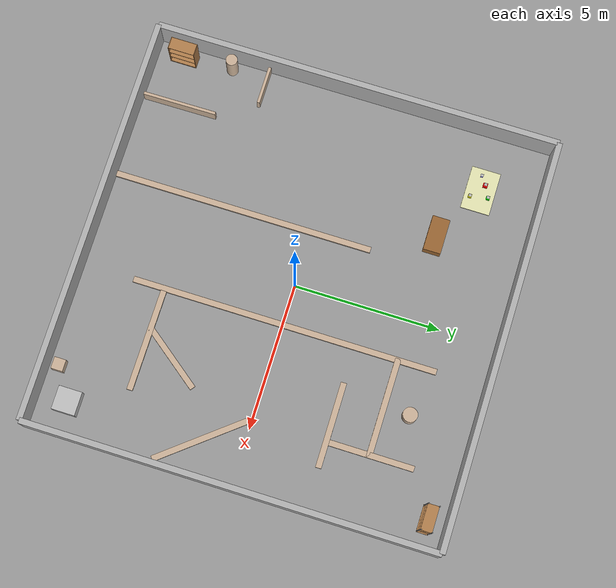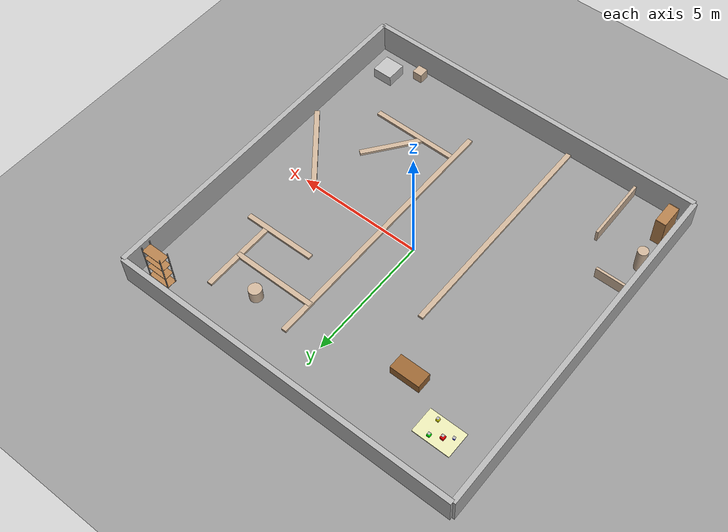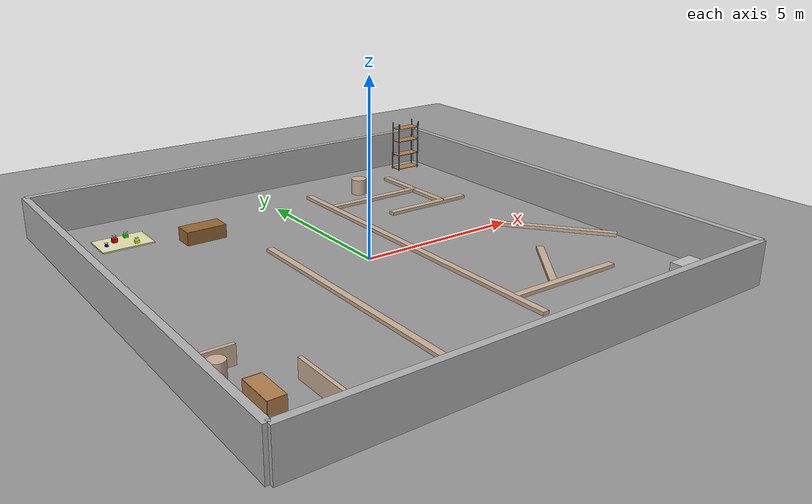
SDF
<sdf version='1.7'>
  <world name='default'>
  <physics type="ode">
    <max_step_size>0.02</max_step_size>
    <real_time_factor>0.95</real_time_factor>
    <rtf_tolerance>0.2</rtf_tolerance>
    <real_time_update_rate>50</real_time_update_rate>
    <ode>
      <solver>
        <type>quick</type>
        <iters>30</iters>
        <sor>1.0</sor>
      </solver>
      <constraints>
        <cfm>0.00001</cfm>
        <erp>0.2</erp>
        <contact_max_correcting_vel>100.0</contact_max_correcting_vel>
        <contact_surface_layer>0.001</contact_surface_layer>
      </constraints>
    </ode>
  </physics>

    <light name='sun' type='directional'>
      <cast_shadows>1</cast_shadows>
      <pose>0 0 10 0 -0 0</pose>
      <diffuse>0.8 0.8 0.8 1</diffuse>
      <specular>0.2 0.2 0.2 1</specular>
      <attenuation>
        <range>1000</range>
        <constant>0.9</constant>
        <linear>0.01</linear>
        <quadratic>0.001</quadratic>
      </attenuation>
      <direction>-0.5 0.1 -0.9</direction>
      <spot>
        <inner_angle>0</inner_angle>
        <outer_angle>0</outer_angle>
        <falloff>0</falloff>
      </spot>
    </light>

    <model name='ground_plane'>
      <static>1</static>
      <link name='link'>
        <collision name="collision">
          <geometry>
            <plane>
              <normal>0 0 1</normal>
              <size>17 17</size>
            </plane>
          </geometry>
          <max_contacts>10</max_contacts>
          <surface>
            <friction>
              <ode>
                <mu>1.0</mu>
                <mu2>1.0</mu2>
                <slip1>0</slip1>
                <slip2>0</slip2>
              </ode>
            </friction>
            <contact>
              <ode>
                <soft_cfm>0.001</soft_cfm>
                <soft_erp>0.2</soft_erp>
              </ode>
            </contact>
          </surface>
        </collision>
        <visual name='visual'>
          <geometry>
            <plane>
              <normal>0 0 1</normal>
              <size>17 17</size>
            </plane>
          </geometry>
          <material>
            <ambient>0.5 0.5 0.5 1</ambient>
            <diffuse>0.6 0.6 0.6 1</diffuse>
          </material>
        </visual>
      </link>
    </model>

    <model name='wall_north'>
      <static>1</static>
      <pose>0 7 0.6 0 -0 0</pose>
      <link name='link'>
        <collision name='collision'>
          <geometry>
            <box>
              <size>14 0.2 1.2</size>
            </box>
          </geometry>
          <max_contacts>10</max_contacts>
          <surface>
            <contact>
              <ode/>
            </contact>
            <bounce/>
            <friction>
              <torsional>
                <ode/>
              </torsional>
              <ode/>
            </friction>
          </surface>
        </collision>
        <visual name='visual'>
          <geometry>
            <box>
              <size>14 0.2 1.2</size>
            </box>
          </geometry>
          <material>
            <ambient>0.7 0.7 0.7 1</ambient>
            <diffuse>0.7 0.7 0.7 1</diffuse>
          </material>
        </visual>
      </link>
    </model>
    <model name='wall_south'>
      <static>1</static>
      <pose>0 -7 0.6 0 -0 0</pose>
      <link name='link'>
        <collision name='collision'>
          <geometry>
            <box>
              <size>14 0.2 1.2</size>
            </box>
          </geometry>
          <max_contacts>10</max_contacts>
          <surface>
            <contact>
              <ode/>
            </contact>
            <bounce/>
            <friction>
              <torsional>
                <ode/>
              </torsional>
              <ode/>
            </friction>
          </surface>
        </collision>
        <visual name='visual'>
          <geometry>
            <box>
              <size>14 0.2 1.2</size>
            </box>
          </geometry>
          <material>
            <ambient>0.7 0.7 0.7 1</ambient>
            <diffuse>0.7 0.7 0.7 1</diffuse>
          </material>
        </visual>
      </link>
    </model>
    <model name='wall_east'>
      <static>1</static>
      <pose>7 0 0.6 0 -0 0</pose>
      <link name='link'>
        <collision name='collision'>
          <geometry>
            <box>
              <size>0.2 14 1.2</size>
            </box>
          </geometry>
          <max_contacts>10</max_contacts>
          <surface>
            <contact>
              <ode/>
            </contact>
            <bounce/>
            <friction>
              <torsional>
                <ode/>
              </torsional>
              <ode/>
            </friction>
          </surface>
        </collision>
        <visual name='visual'>
          <geometry>
            <box>
              <size>0.2 14 1.2</size>
            </box>
          </geometry>
          <material>
            <ambient>0.7 0.7 0.7 1</ambient>
            <diffuse>0.7 0.7 0.7 1</diffuse>
          </material>
        </visual>
      </link>
    </model>
    <model name='wall_west'>
      <static>1</static>
      <pose>-7 0 0.6 0 -0 0</pose>
      <link name='link'>
        <collision name='collision'>
          <geometry>
            <box>
              <size>0.2 14 1.2</size>
            </box>
          </geometry>
          <max_contacts>10</max_contacts>
          <surface>
            <contact>
              <ode/>
            </contact>
            <bounce/>
            <friction>
              <torsional>
                <ode/>
              </torsional>
              <ode/>
            </friction>
          </surface>
        </collision>
        <visual name='visual'>
          <geometry>
            <box>
              <size>0.2 14 1.2</size>
            </box>
          </geometry>
          <material>
            <ambient>0.7 0.7 0.7 1</ambient>
            <diffuse>0.7 0.7 0.7 1</diffuse>
          </material>
        </visual>
      </link>
    </model>

    <model name='shelf1'>
      <static>1</static>
      <link name='link'>
        <inertial>
          <mass>1</mass>
        </inertial>
        <collision name='back'>
          <pose>0 0.005 0.6 0 -0 0</pose>
          <geometry>
            <box>
              <size>0.9 0.01 1.2</size>
            </box>
          </geometry>
          <max_contacts>10</max_contacts>
          <surface>
            <contact><ode/></contact>
            <bounce/>
            <friction>
              <torsional><ode/></torsional>
              <ode/>
            </friction>
          </surface>
        </collision>
        <visual name='visual1'>
          <pose>0 0.005 0.6 0 -0 0</pose>
          <geometry>
            <box>
              <size>0.9 0.01 1.2</size>
            </box>
          </geometry>
          <material>
            <diffuse>1 1 1 1</diffuse>
            <script>
              <uri>file://media/materials/scripts/gazebo.material</uri>
              <name>Gazebo/Wood</name>
            </script>
          </material>
        </visual>

        <collision name='left_side'>
          <pose>0.45 -0.195 0.6 0 -0 0</pose>
          <geometry>
            <box>
              <size>0.02 0.4 1.2</size>
            </box>
          </geometry>
          <max_contacts>10</max_contacts>
          <surface>
            <contact><ode/></contact>
            <bounce/>
            <friction>
              <torsional><ode/></torsional>
              <ode/>
            </friction>
          </surface>
        </collision>
        <visual name='visual2'>
          <pose>0.45 -0.195 0.6 0 -0 0</pose>
          <geometry>
            <box>
              <size>0.02 0.4 1.2</size>
            </box>
          </geometry>
          <material>
            <diffuse>1 1 1 1</diffuse>
            <script>
              <uri>file://media/materials/scripts/gazebo.material</uri>
              <name>Gazebo/Wood</name>
            </script>
          </material>
        </visual>

        <collision name='right_side'>
          <pose>-0.45 -0.195 0.6 0 -0 0</pose>
          <geometry>
            <box>
              <size>0.02 0.4 1.2</size>
            </box>
          </geometry>
          <max_contacts>10</max_contacts>
          <surface>
            <contact><ode/></contact>
            <bounce/>
            <friction>
              <torsional><ode/></torsional>
              <ode/>
            </friction>
          </surface>
        </collision>
        <visual name='visual3'>
          <pose>-0.45 -0.195 0.6 0 -0 0</pose>
          <geometry>
            <box>
              <size>0.02 0.4 1.2</size>
            </box>
          </geometry>
          <material>
            <diffuse>1 1 1 1</diffuse>
            <script>
              <uri>file://media/materials/scripts/gazebo.material</uri>
              <name>Gazebo/Wood</name>
            </script>
          </material>
        </visual>

        <collision name='bottom'>
          <pose>0 -0.195 0.03 0 -0 0</pose>
          <geometry>
            <box>
              <size>0.88 0.4 0.06</size>
            </box>
          </geometry>
          <max_contacts>10</max_contacts>
          <surface>
            <contact><ode/></contact>
            <bounce/>
            <friction>
              <torsional><ode/></torsional>
              <ode/>
            </friction>
          </surface>
        </collision>
        <visual name='visual4'>
          <pose>0 -0.195 0.03 0 -0 0</pose>
          <geometry>
            <box>
              <size>0.88 0.4 0.06</size>
            </box>
          </geometry>
          <material>
            <diffuse>1 1 1 1</diffuse>
            <script>
              <uri>file://media/materials/scripts/gazebo.material</uri>
              <name>Gazebo/Wood</name>
            </script>
          </material>
        </visual>

        <collision name='top'>
          <pose>0 -0.195 1.19 0 -0 0</pose>
          <geometry>
            <box>
              <size>0.88 0.4 0.02</size>
            </box>
          </geometry>
          <max_contacts>10</max_contacts>
          <surface>
            <contact><ode/></contact>
            <bounce/>
            <friction>
              <torsional><ode/></torsional>
              <ode/>
            </friction>
          </surface>
        </collision>
        <visual name='visual5'>
          <pose>0 -0.195 1.19 0 0 0</pose>
          <geometry>
            <box>
              <size>0.88 0.4 0.02</size>
            </box>
          </geometry>
          <material>
            <diffuse>1 1 1 1</diffuse>
            <script>
              <uri>file://media/materials/scripts/gazebo.material</uri>
              <name>Gazebo/Wood</name>
            </script>
          </material>
        </visual>

        <collision name='low_shelf'>
          <pose>0 -0.195 0.43 0 -0 0</pose>
          <geometry>
            <box>
              <size>0.88 0.4 0.02</size>
            </box>
          </geometry>
          <max_contacts>10</max_contacts>
          <surface>
            <contact><ode/></contact>
            <bounce/>
            <friction>
              <torsional><ode/></torsional>
              <ode/>
            </friction>
          </surface>
        </collision>
        <visual name='visual6'>
          <pose>0 -0.195 0.43 0 -0 0</pose>
          <geometry>
            <box>
              <size>0.88 0.4 0.02</size>
            </box>
          </geometry>
          <material>
            <diffuse>1 1 1 1</diffuse>
            <script>
              <uri>file://media/materials/scripts/gazebo.material</uri>
              <name>Gazebo/Wood</name>
            </script>
          </material>
        </visual>

        <collision name='high_shelf'>
          <pose>0 -0.195 0.8 0 -0 0</pose>
          <geometry>
            <box>
              <size>0.88 0.4 0.02</size>
            </box>
          </geometry>
          <max_contacts>10</max_contacts>
          <surface>
            <contact><ode/></contact>
            <bounce/>
            <friction>
              <torsional><ode/></torsional>
              <ode/>
            </friction>
          </surface>
        </collision>
        <visual name='visual7'>
          <pose>0 -0.195 0.8 0 -0 0</pose>
          <geometry>
            <box>
              <size>0.88 0.4 0.02</size>
            </box>
          </geometry>
          <material>
            <diffuse>1 1 1 1</diffuse>
            <script>
              <uri>file://media/materials/scripts/gazebo.material</uri>
              <name>Gazebo/Wood</name>
            </script>
          </material>
        </visual>

        <self_collide>0</self_collide>
        <enable_wind>0</enable_wind>
        <kinematic>0</kinematic>
      </link>
      <pose>-6.689921 -5.985553 0 0 0 1.568251</pose>
    </model>

    <model name='shelf2'>
      <static>1</static>
      <pose>6.07 6.3 0 0 0 0</pose>
      <link name='body'>
        <!-- 底板 -->
        <collision name='bottom_board'>
          <pose>0 0 0.05 0 0 0</pose>
          <geometry>
            <box>
              <size>0.9 0.4 0.02</size>
            </box>
          </geometry>
          <surface>
            <contact><ode/></contact>
            <friction><ode><mu>0.8</mu></ode></friction>
          </surface>
        </collision>
        <visual name='bottom_board_vis'>
          <pose>0 0 0.05 0 0 0</pose>
          <geometry>
            <box>
              <size>0.9 0.4 0.02</size>
            </box>
          </geometry>
          <material>
            <ambient>0.7 0.5 0.3 1</ambient>
            <diffuse>0.7 0.5 0.3 1</diffuse>
          </material>
        </visual>

        <!-- 支柱1：前左 -->
        <collision name='leg_front_left'>
          <pose>-0.42 -0.18 0.85 0 0 0</pose>
          <geometry>
            <cylinder>
              <radius>0.02</radius>
              <length>1.7</length>
            </cylinder>
          </geometry>
          <surface>
            <contact><ode/></contact>
            <friction><ode><mu>0.8</mu></ode></friction>
          </surface>
        </collision>
        <visual name='leg_front_left_vis'>
          <pose>-0.42 -0.18 0.85 0 0 0</pose>
          <geometry>
            <cylinder>
              <radius>0.02</radius>
              <length>1.7</length>
            </cylinder>
          </geometry>
          <material>
            <ambient>0.5 0.5 0.5 1</ambient>
            <diffuse>0.5 0.5 0.5 1</diffuse>
          </material>
        </visual>

        <!-- 支柱2：前右 -->
        <collision name='leg_front_right'>
          <pose>0.42 -0.18 0.85 0 0 0</pose>
          <geometry>
            <cylinder>
              <radius>0.02</radius>
              <length>1.7</length>
            </cylinder>
          </geometry>
          <surface>
            <contact><ode/></contact>
            <friction><ode><mu>0.8</mu></ode></friction>
          </surface>
        </collision>
        <visual name='leg_front_right_vis'>
          <pose>0.42 -0.18 0.85 0 0 0</pose>
          <geometry>
            <cylinder>
              <radius>0.02</radius>
              <length>1.7</length>
            </cylinder>
          </geometry>
          <material>
            <ambient>0.5 0.5 0.5 1</ambient>
            <diffuse>0.5 0.5 0.5 1</diffuse>
          </material>
        </visual>

        <!-- 支柱3：后左 -->
        <collision name='leg_back_left'>
          <pose>-0.42 0.18 0.85 0 0 0</pose>
          <geometry>
            <cylinder>
              <radius>0.02</radius>
              <length>1.7</length>
            </cylinder>
          </geometry>
          <surface>
            <contact><ode/></contact>
            <friction><ode><mu>0.8</mu></ode></friction>
          </surface>
        </collision>
        <visual name='leg_back_left_vis'>
          <pose>-0.42 0.18 0.85 0 0 0</pose>
          <geometry>
            <cylinder>
              <radius>0.02</radius>
              <length>1.7</length>
            </cylinder>
          </geometry>
          <material>
            <ambient>0.5 0.5 0.5 1</ambient>
            <diffuse>0.5 0.5 0.5 1</diffuse>
          </material>
        </visual>

        <!-- 支柱4：后右 -->
        <collision name='leg_back_right'>
          <pose>0.42 0.18 0.85 0 0 0</pose>
          <geometry>
            <cylinder>
              <radius>0.02</radius>
              <length>1.7</length>
            </cylinder>
          </geometry>
          <surface>
            <contact><ode/></contact>
            <friction><ode><mu>0.8</mu></ode></friction>
          </surface>
        </collision>
        <visual name='leg_back_right_vis'>
          <pose>0.42 0.18 0.85 0 0 0</pose>
          <geometry>
            <cylinder>
              <radius>0.02</radius>
              <length>1.7</length>
            </cylinder>
          </geometry>
          <material>
            <ambient>0.5 0.5 0.5 1</ambient>
            <diffuse>0.5 0.5 0.5 1</diffuse>
          </material>
        </visual>

        <!-- 搁板1（底层） -->
        <collision name='bottom'>
          <pose>0 0 0.55 0 0 0</pose>
          <geometry>
            <box>
              <size>0.86 0.38 0.02</size>
            </box>
          </geometry>
          <surface>
            <contact><ode/></contact>
            <friction><ode><mu>0.8</mu></ode></friction>
          </surface>
        </collision>
        <visual name='shelf1_vis'>
          <pose>0 0 0.55 0 0 0</pose>
          <geometry>
            <box>
              <size>0.86 0.38 0.02</size>
            </box>
          </geometry>
          <material>
            <ambient>0.7 0.5 0.3 1</ambient>
            <diffuse>0.7 0.5 0.3 1</diffuse>
          </material>
        </visual>

        <!-- 搁板2（中层） -->
        <collision name='middle'>
          <pose>0 0 1.05 0 0 0</pose>
          <geometry>
            <box>
              <size>0.86 0.38 0.02</size>
            </box>
          </geometry>
          <surface>
            <contact><ode/></contact>
            <friction><ode><mu>0.8</mu></ode></friction>
          </surface>
        </collision>
        <visual name='shelf2_vis'>
          <pose>0 0 1.05 0 0 0</pose>
          <geometry>
            <box>
              <size>0.86 0.38 0.02</size>
            </box>
          </geometry>
          <material>
            <ambient>0.7 0.5 0.3 1</ambient>
            <diffuse>0.7 0.5 0.3 1</diffuse>
          </material>
        </visual>

        <!-- 搁板3（高层） -->
        <collision name='top'>
          <pose>0 0 1.5 0 0 0</pose>
          <geometry>
            <box>
              <size>0.86 0.38 0.02</size>
            </box>
          </geometry>
          <surface>
            <contact><ode/></contact>
            <friction><ode><mu>0.8</mu></ode></friction>
          </surface>
        </collision>
        <visual name='shelf3_vis'>
          <pose>0 0 1.5 0 0 0</pose>
          <geometry>
            <box>
              <size>0.86 0.38 0.02</size>
            </box>
          </geometry>
          <material>
            <ambient>0.7 0.5 0.3 1</ambient>
            <diffuse>0.7 0.5 0.3 1</diffuse>
          </material>
        </visual>

        <self_collide>0</self_collide>
        <enable_wind>0</enable_wind>
        <kinematic>0</kinematic>
      </link>
    </model>

    <model name='shelf3'>
      <static>1</static>
      <pose>5.9 -5.9 0.225 0 -0 0</pose>
      <link name='body'>
        <inertial>
          <mass>8</mass>
          <inertia>
            <ixx>0.4</ixx>
            <iyy>0.4</iyy>
            <izz>0.4</izz>
            <ixy>0</ixy>
            <ixz>0</ixz>
            <iyz>0</iyz>
          </inertia>
        </inertial>
        <collision name='collision'>
          <geometry>
            <box>
              <size>0.8 0.8 0.45</size>
            </box>
          </geometry>
          <max_contacts>10</max_contacts>
          <surface>
            <contact>
              <ode/>
            </contact>
            <bounce/>
            <friction>
              <torsional>
                <ode/>
              </torsional>
              <ode/>
            </friction>
          </surface>
        </collision>
        <visual name='visual'>
          <geometry>
            <box>
              <size>0.8 0.8 0.45</size>
            </box>
          </geometry>
          <material>
            <ambient>0.75 0.75 0.75 1</ambient>
            <diffuse>0.75 0.75 0.75 1</diffuse>
          </material>
        </visual>
      </link>
    </model>

    <model name='wooden1_south'>
      <static>1</static>
      <pose>-1.909132 -2.480868 0.05 0 0 0</pose>
      <link name='link'>
        <collision name='collision'>
          <geometry>
            <box>
              <size>0.2 9.06 0.1</size>
            </box>
          </geometry>
        </collision>
        <visual name='visual'>
          <geometry>
            <box>
              <size>0.2 9.06 0.1</size>
            </box>
          </geometry>
          <material>
            <ambient>0.8 0.7 0.6 1</ambient>
            <diffuse>0.8 0.7 0.6 1</diffuse>
          </material>
        </visual>
      </link>
    </model>

    <model name='wooden2_south'>
      <static>1</static>
      <pose>1.380459 0.056440 0.05 0 0 0</pose>
      <link name='link'>
        <collision name='collision'>
          <geometry>
            <box>
              <size>0.2 10.48 0.1</size>
            </box>
          </geometry>
        </collision>
        <visual name='visual'>
          <geometry>
            <box>
              <size>0.2 10.48 0.1</size>
            </box>
          </geometry>
          <material>
            <ambient>0.8 0.7 0.6 1</ambient>
            <diffuse>0.8 0.7 0.6 1</diffuse>
          </material>
        </visual>
      </link>
    </model>

    <model name='wooden3_parallel_south'>
      <static>1</static>
      <pose>3.199973 -4.111985 0.05 0 0 -1.577488</pose>
      <link name='link'>
        <collision name='collision'>
          <geometry>
            <box>
              <size>0.2 3.47 0.1</size>
            </box>
          </geometry>
        </collision>
        <visual name='visual'>
          <geometry>
            <box>
              <size>0.2 3.47 0.1</size>
            </box>
          </geometry>
          <material>
            <ambient>0.8 0.7 0.6 1</ambient>
            <diffuse>0.8 0.7 0.6 1</diffuse>
          </material>
        </visual>
      </link>
    </model>

    <model name='wooden4_str_psouth'>
      <static>1</static>
      <pose>3.529444 -3.134761 0.05 0 0 2.489357</pose>
      <link name='link'>
        <collision name='collision'>
          <geometry>
            <box>
              <size>0.2 2.43 0.1</size>
            </box>
          </geometry>
        </collision>
        <visual name='visual'>
          <geometry>
            <box>
              <size>0.2 2.43 0.1</size>
            </box>
          </geometry>
          <material>
            <ambient>0.8 0.7 0.6 1</ambient>
            <diffuse>0.8 0.7 0.6 1</diffuse>
          </material>
        </visual>
      </link>
    </model>

    <model name='wooden5_alone_east'>
      <static>1</static>
      <pose>5.751680 -1.365539 0.05 0 0 -2.461690</pose>
      <link name='link'>
        <collision name='collision'>
          <geometry>
            <box>
              <size>0.2 3.47 0.1</size>
            </box>
          </geometry>
        </collision>
        <visual name='visual'>
          <geometry>
            <box>
              <size>0.2 3.47 0.1</size>
            </box>
          </geometry>
          <material>
            <ambient>0.8 0.7 0.6 1</ambient>
            <diffuse>0.8 0.7 0.6 1</diffuse>
          </material>
        </visual>
      </link>
    </model>

    <model name='wooden6_str_east'>
      <static>1</static>
      <pose>4.067688 2.507385 0.05 0 0 -1.566243</pose>
      <link name='link'>
        <collision name='collision'>
          <geometry>
            <box>
              <size>0.2 2.9 0.1</size>
            </box>
          </geometry>
        </collision>
        <visual name='visual'>
          <geometry>
            <box>
              <size>0.2 2.9 0.1</size>
            </box>
          </geometry>
          <material>
            <ambient>0.8 0.7 0.6 1</ambient>
            <diffuse>0.8 0.7 0.6 1</diffuse>
          </material>
        </visual>
      </link>
    </model>

    <model name='wooden7_parallel_east'>
      <static>1</static>
      <pose>4.631216 3.977165 0.05 0 0 0</pose>
      <link name='link'>
        <collision name='collision'>
          <geometry>
            <box>
              <size>0.2 3.02 0.1</size>
            </box>
          </geometry>
        </collision>
        <visual name='visual'>
          <geometry>
            <box>
              <size>0.2 3.02 0.1</size>
            </box>
          </geometry>
          <material>
            <ambient>0.8 0.7 0.6 1</ambient>
            <diffuse>0.8 0.7 0.6 1</diffuse>
          </material>
        </visual>
      </link>
    </model>

    <model name='wooden8_parallel_north'>
      <static>1</static>
      <pose>3.010885 3.976159 0.05 0 0 -1.571304</pose>
      <link name='link'>
        <collision name='collision'>
          <geometry>
            <box>
              <size>0.2 3.38 0.1</size>
            </box>
          </geometry>
        </collision>
        <visual name='visual'>
          <geometry>
            <box>
              <size>0.2 3.38 0.1</size>
            </box>
          </geometry>
          <material>
            <ambient>0.8 0.7 0.6 1</ambient>
            <diffuse>0.8 0.7 0.6 1</diffuse>
          </material>
        </visual>
      </link>
    </model>

    <model name='narrow_wall1'>
      <static>1</static>
      <pose>-6.278199 -3.047679 0.25 0 0 0</pose>
      <link name='link'>
        <inertial>
          <mass>4</mass>
          <inertia>
            <ixx>0.2</ixx>
            <iyy>0.2</iyy>
            <izz>0.2</izz>
            <ixy>0</ixy>
            <ixz>0</ixz>
            <iyz>0</iyz>
          </inertia>
        </inertial>
        <collision name='collision'>
          <geometry>
            <box>
              <size>1.37764 0.1 0.5</size>
            </box>
          </geometry>
          <max_contacts>10</max_contacts>
          <surface>
            <contact>
              <ode/>
            </contact>
            <bounce/>
            <friction>
              <torsional>
                <ode/>
              </torsional>
              <ode/>
            </friction>
          </surface>
        </collision>
        <visual name='visual'>
          <geometry>
            <box>
              <size>1.37764 0.1 0.5</size>
            </box>
          </geometry>
          <material>
            <ambient>0.8 0.7 0.6 1</ambient>
            <diffuse>0.8 0.7 0.6 1</diffuse>
          </material>
        </visual>
      </link>
    </model>

    <model name='narrow_wall2'>
      <static>1</static>
      <pose>-4.780673 -5.583704 0.25 0 0 1.578324</pose>
      <link name='link'>
        <inertial>
          <mass>4</mass>
          <inertia>
            <ixx>0.2</ixx>
            <iyy>0.2</iyy>
            <izz>0.2</izz>
            <ixy>0</ixy>
            <ixz>0</ixz>
            <iyz>0</iyz>
          </inertia>
        </inertial>
        <collision name='collision'>
          <geometry>
            <box>
              <size>2.54 0.1 0.5</size>
            </box>
          </geometry>
          <max_contacts>10</max_contacts>
          <surface>
            <contact>
              <ode/>
            </contact>
            <bounce/>
            <friction>
              <torsional>
                <ode/>
              </torsional>
              <ode/>
            </friction>
          </surface>
        </collision>
        <visual name='visual'>
          <geometry>
            <box>
              <size>2.54 0.1 0.5</size>
            </box>
          </geometry>
          <material>
            <ambient>0.8 0.7 0.6 1</ambient>
            <diffuse>0.8 0.7 0.6 1</diffuse>
          </material>
        </visual>
      </link>
    </model>

    <model name='obstacle_cylinder1'>
      <static>1</static>
      <pose>3.029996 4.849996 0.25 0 0 0</pose>
      <link name='link'>
        <inertial>
          <mass>5</mass>
          <inertia>
            <ixx>0.1</ixx>
            <iyy>0.1</iyy>
            <izz>0.1</izz>
            <ixy>0</ixy>
            <ixz>0</ixz>
            <iyz>0</iyz>
          </inertia>
        </inertial>
        <collision name='collision'>
          <geometry>
            <cylinder>
              <radius>0.25</radius>
              <length>0.5</length>
            </cylinder>
          </geometry>
          <max_contacts>10</max_contacts>
          <surface>
            <contact>
              <ode/>
            </contact>
            <bounce/>
            <friction>
              <torsional>
                <ode/>
              </torsional>
              <ode/>
            </friction>
          </surface>
        </collision>
        <visual name='visual'>
          <geometry>
            <cylinder>
              <radius>0.25</radius>
              <length>0.5</length>
            </cylinder>
          </geometry>
          <material>
            <ambient>0.8 0.7 0.6 1</ambient>
            <diffuse>0.8 0.7 0.6 1</diffuse>
          </material>
        </visual>
      </link>
    </model>

    <model name='obstacle_box2'>
      <static>1</static>
      <pose>4.849996 -6.559319 0.2 0 0 0</pose>
      <link name='link'>
        <inertial>
          <mass>2</mass>
          <inertia>
            <ixx>0.05</ixx>
            <iyy>0.05</iyy>
            <izz>0.05</izz>
            <ixy>0</ixy>
            <ixz>0</ixz>
            <iyz>0</iyz>
          </inertia>
        </inertial>
        <collision name='collision'>
          <geometry>
            <box>
              <size>0.4 0.4 0.4</size>
            </box>
          </geometry>
          <max_contacts>10</max_contacts>
          <surface>
            <contact>
              <ode/>
            </contact>
            <bounce/>
            <friction>
              <torsional>
                <ode/>
              </torsional>
              <ode/>
            </friction>
          </surface>
        </collision>
        <visual name='visual'>
          <geometry>
            <box>
              <size>0.4 0.4 0.4</size>
            </box>
          </geometry>
          <material>
            <ambient>0.8 0.7 0.6 1</ambient>
            <diffuse>0.8 0.7 0.6 1</diffuse>
          </material>
        </visual>
      </link>
    </model>

    <model name='pillar'>
      <static>1</static>
      <pose>-6.6 -4.3 0.5 0 0 0</pose>
      <link name='link'>
        <inertial>
          <mass>5</mass>
          <inertia>
            <ixx>0.1</ixx>
            <iyy>0.1</iyy>
            <izz>0.1</izz>
            <ixy>0</ixy>
            <ixz>0</ixz>
            <iyz>0</iyz>
          </inertia>
        </inertial>
        <collision name='collision'>
          <geometry>
            <cylinder>
              <radius>0.2</radius>
              <length>1</length>
            </cylinder>
          </geometry>
          <max_contacts>10</max_contacts>
          <surface>
            <contact>
              <ode/>
            </contact>
            <bounce/>
            <friction>
              <torsional>
                <ode/>
              </torsional>
              <ode/>
            </friction>
          </surface>
        </collision>
        <visual name='visual'>
          <geometry>
            <cylinder>
              <radius>0.2</radius>
              <length>1</length>
            </cylinder>
          </geometry>
          <material>
            <ambient>0.8 0.7 0.6 1</ambient>
            <diffuse>0.8 0.7 0.6 1</diffuse>
          </material>
        </visual>
      </link>
    </model>

    <model name='workbench'>
      <static>1</static>
      <pose>-3 4 0.2 0 0 0</pose>
      <link name='link'>
        <inertial>
          <mass>6</mass>
          <inertia>
            <ixx>0.3</ixx>
            <iyy>0.3</iyy>
            <izz>0.3</izz>
            <ixy>0</ixy>
            <ixz>0</ixz>
            <iyz>0</iyz>
          </inertia>
        </inertial>
        <collision name='collision'>
          <geometry>
            <box>
              <size>1.2 0.6 0.4</size>
            </box>
          </geometry>
          <max_contacts>10</max_contacts>
          <surface>
            <contact>
              <ode/>
            </contact>
            <bounce/>
            <friction>
              <torsional>
                <ode/>
              </torsional>
              <ode/>
            </friction>
          </surface>
        </collision>
        <visual name='visual'>
          <geometry>
            <box>
              <size>1.2 0.6 0.4</size>
            </box>
          </geometry>
          <material>
            <ambient>0.6 0.4 0.2 1</ambient>
            <diffuse>0.6 0.4 0.2 1</diffuse>
          </material>
        </visual>
      </link>
    </model>

    <model name='pickup_area'>
      <static>1</static>
      <pose>-5 5 0.02 0 0 0</pose>
      <link name='tray'>
        <inertial>
          <mass>5</mass>
          <inertia>
            <ixx>0.1</ixx>
            <iyy>0.1</iyy>
            <izz>0.1</izz>
            <ixy>0</ixy>
            <ixz>0</ixz>
            <iyz>0</iyz>
          </inertia>
        </inertial>
        <collision name='collision'>
          <geometry>
            <box>
              <size>1.5 1 0.04</size>
            </box>
          </geometry>
          <max_contacts>10</max_contacts>
          <surface>
            <contact>
              <ode/>
            </contact>
            <bounce/>
            <friction>
              <torsional>
                <ode/>
              </torsional>
              <ode/>
            </friction>
          </surface>
        </collision>
        <visual name='visual'>
          <geometry>
            <box>
              <size>1.5 1 0.04</size>
            </box>
          </geometry>
          <material>
            <ambient>0.9 0.9 0.7 1</ambient>
            <diffuse>0.9 0.9 0.7 1</diffuse>
          </material>
        </visual>
      </link>
    </model>

    <model name='object_red'>
      <static>1</static>
      <pose>-5.2 5.1 0.08 0 0 0</pose>
      <link name='link'>
        <inertial>
          <mass>0.5</mass>
          <inertia><ixx>0.001</ixx><iyy>0.001</iyy><izz>0.001</izz><ixy>0</ixy><ixz>0</ixz><iyz>0</iyz></inertia>
        </inertial>
        <collision name='collision'>
          <geometry><box><size>0.15 0.15 0.15</size></box></geometry>
          <surface><contact><ode/></contact><bounce/><friction><torsional><ode/></torsional><ode/></friction></surface>
        </collision>
        <visual name='visual'>
          <geometry><box><size>0.15 0.15 0.15</size></box></geometry>
          <material><ambient>1 0 0 1</ambient><diffuse>1 0 0 1</diffuse></material>
        </visual>
      </link>
      <!-- AprilTag 标记 -->
      <model name='apriltag_red'>
        <static>1</static>
        <pose>0 0 0.156 0 0 0</pose>
        <link name='tag_link'>
          <visual name='visual'>
            <geometry><box><size>0.1 0.1 0.002</size></box></geometry>
            <material>
              <script>
                <uri>model://apriltag0/materials/scripts</uri>
                <uri>model://apriltag0/materials/textures</uri>
                <name>Apriltag/Pattern16h5/0</name>
              </script>
            </material>
          </visual>
          <collision name='collision'>
            <geometry><box><size>0.1 0.1 0.002</size></box></geometry>
          </collision>
        </link>
      </model>
    </model>

    <!-- 绿色物块 + AprilTag ID 1 -->
    <model name='object_green'>
      <static>1</static>
      <pose>-4.8 5.3 0.07 0 0 0</pose>
      <link name='link'>
        <inertial>
          <mass>0.4</mass>
          <inertia><ixx>0.0008</ixx><iyy>0.0008</iyy><izz>0.0008</izz><ixy>0</ixy><ixz>0</ixz><iyz>0</iyz></inertia>
        </inertial>
        <collision name='collision'>
          <geometry><box><size>0.12 0.12 0.12</size></box></geometry>
          <surface><contact><ode/></contact><bounce/><friction><torsional><ode/></torsional><ode/></friction></surface>
        </collision>
        <visual name='visual'>
          <geometry><box><size>0.12 0.12 0.12</size></box></geometry>
          <material><ambient>0 1 0 1</ambient><diffuse>0 1 0 1</diffuse></material>
        </visual>
      </link>
      <model name='apriltag_green'>
        <static>1</static>
        <pose>0 0 0.131 0 0 0</pose>
        <link name='tag_link'>
          <visual name='visual'>
            <geometry><box><size>0.1 0.1 0.002</size></box></geometry>
            <material>
              <script>
                <uri>model://apriltag0/materials/scripts</uri>
                <uri>model://apriltag0/materials/textures</uri>
                <name>Apriltag/Pattern16h5/1</name>
              </script>
            </material>
          </visual>
          <collision name='collision'>
            <geometry><box><size>0.1 0.1 0.002</size></box></geometry>
          </collision>
        </link>
      </model>
    </model>

    <!-- 蓝色物块 + AprilTag ID 2 -->
    <model name='object_blue'>
      <static>1</static>
      <pose>-5.5 4.9 0.05 0 0 0</pose>
      <link name='link'>
        <inertial>
          <mass>0.3</mass>
          <inertia><ixx>0.0005</ixx><iyy>0.0005</iyy><izz>0.0005</izz><ixy>0</ixy><ixz>0</ixz><iyz>0</iyz></inertia>
        </inertial>
        <collision name='collision'>
          <geometry><box><size>0.08 0.08 0.08</size></box></geometry>
          <surface><contact><ode/></contact><bounce/><friction><torsional><ode/></torsional><ode/></friction></surface>
        </collision>
        <visual name='visual'>
          <geometry><box><size>0.08 0.08 0.08</size></box></geometry>
          <material><ambient>0 0 1 1</ambient><diffuse>0 0 1 1</diffuse></material>
        </visual>
      </link>
      <model name='apriltag_blue'>
        <static>1</static>
        <pose>0 0 0.091 0 0 0</pose>
        <link name='tag_link'>
          <visual name='visual'>
            <geometry><box><size>0.1 0.1 0.002</size></box></geometry>
            <material>
              <script>
                <uri>model://apriltag0/materials/scripts</uri>
                <uri>model://apriltag0/materials/textures</uri>
                <name>Apriltag/Pattern16h5/2</name>
              </script>
            </material>
          </visual>
          <collision name='collision'>
            <geometry><box><size>0.1 0.1 0.002</size></box></geometry>
          </collision>
        </link>
      </model>
    </model>

    <!-- 黄色物块 + AprilTag ID 3 -->
    <model name='object_yellow'>
      <static>1</static>
      <pose>-4.7 4.7 0.06 0 0 0</pose>
      <link name='link'>
        <inertial>
          <mass>0.4</mass>
          <inertia><ixx>0.0008</ixx><iyy>0.0008</iyy><izz>0.0008</izz><ixy>0</ixy><ixz>0</ixz><iyz>0</iyz></inertia>
        </inertial>
        <collision name='collision'>
          <geometry><box><size>0.12 0.12 0.12</size></box></geometry>
          <surface><contact><ode/></contact><bounce/><friction><torsional><ode/></torsional><ode/></friction></surface>
        </collision>
        <visual name='visual'>
          <geometry><box><size>0.12 0.12 0.12</size></box></geometry>
          <material><ambient>1 1 0 1</ambient><diffuse>1 1 0 1</diffuse></material>
        </visual>
      </link>
      <model name='apriltag_yellow'>
        <static>1</static>
        <pose>0 0 0.121 0 0 0</pose>
        <link name='tag_link'>
          <visual name='visual'>
            <geometry><box><size>0.1 0.1 0.002</size></box></geometry>
            <material>
              <script>
                <uri>model://apriltag0/materials/scripts</uri>
                <uri>model://apriltag0/materials/textures</uri>
                <name>Apriltag/Pattern16h5/3</name>
              </script>
            </material>
          </visual>
          <collision name='collision'>
            <geometry><box><size>0.1 0.1 0.002</size></box></geometry>
          </collision>
        </link>
      </model>
    </model>

  </world>
</sdf>
